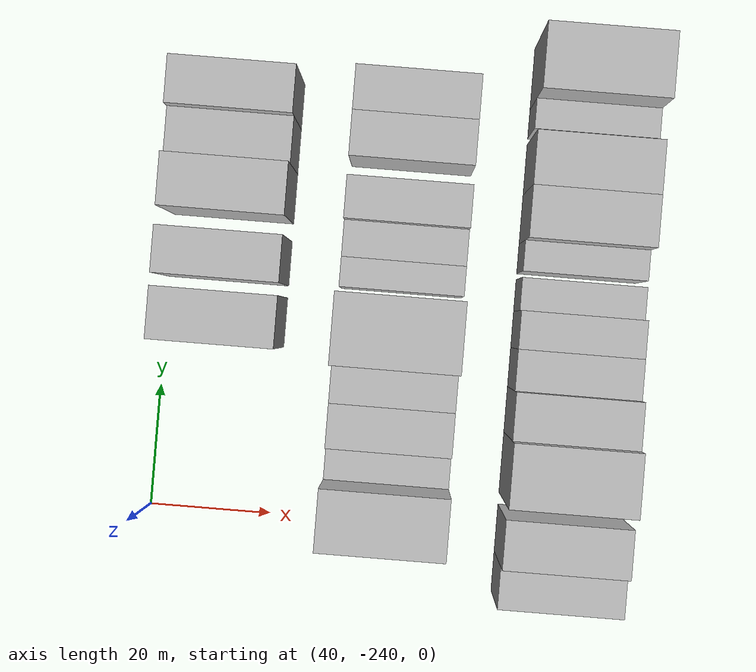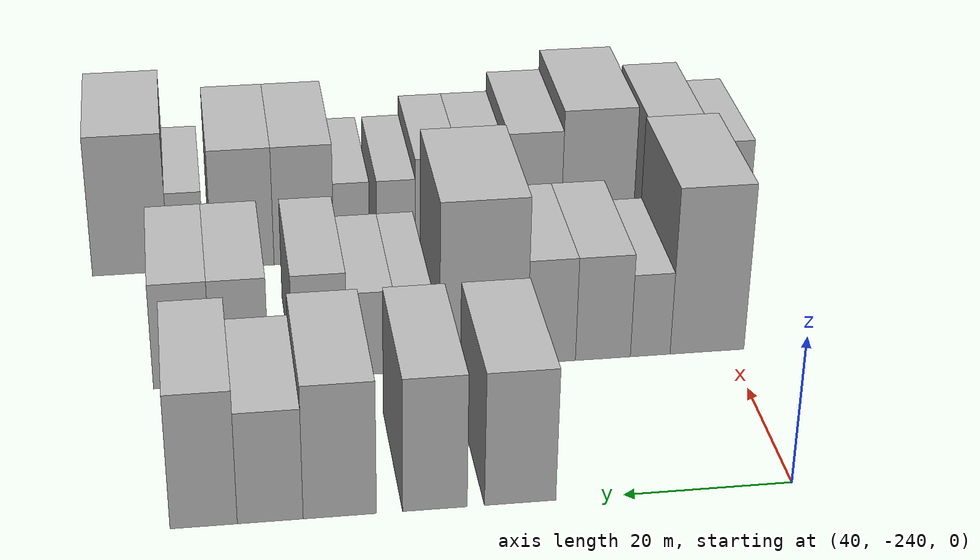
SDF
<sdf version="1.6">
 <world name="default">
  <model name="building_9">
   <static>1</static>
   <pose>50.0000 -207.9036 0 0.000000 0.000000 0.000000</pose>
   <link name="link">
    <pose>0 0 9.00 0 0 0</pose>
    <collision name="collision"><geometry><box><size>20.0000 8.3043 18.0000</size></box></geometry></collision>
    <visual name="visual">
     <cast_shadows>0</cast_shadows>
     <geometry><box><size>20.0000 8.3043 18.0000</size></box></geometry>
     <material>
      <script>
       <uri>model://HANNAS_wall/materials/scripts</uri>
       <uri>model://HANNAS_wall/materials/textures</uri>
       <name>vrc/HANNAS_wall</name>
      </script>
     </material>
    </visual>
   </link>
  </model>
  <model name="building_10">
   <static>1</static>
   <pose>50.0000 -198.0247 0 0.000000 0.000000 0.000000</pose>
   <link name="link">
    <pose>0 0 9.00 0 0 0</pose>
    <collision name="collision"><geometry><box><size>20.0000 7.4536 18.0000</size></box></geometry></collision>
    <visual name="visual">
     <cast_shadows>0</cast_shadows>
     <geometry><box><size>20.0000 7.4536 18.0000</size></box></geometry>
     <material>
      <script>
       <uri>model://HANNAS_wall/materials/scripts</uri>
       <uri>model://HANNAS_wall/materials/textures</uri>
       <name>vrc/HANNAS_wall</name>
      </script>
     </material>
    </visual>
   </link>
  </model>
  <model name="building_11">
   <static>1</static>
   <pose>50.0000 -187.1079 0 0.000000 0.000000 0.000000</pose>
   <link name="link">
    <pose>0 0 9.00 0 0 0</pose>
    <collision name="collision"><geometry><box><size>20.0000 8.3798 18.0000</size></box></geometry></collision>
    <visual name="visual">
     <cast_shadows>0</cast_shadows>
     <geometry><box><size>20.0000 8.3798 18.0000</size></box></geometry>
     <material>
      <script>
       <uri>model://HANNAS_wall/materials/scripts</uri>
       <uri>model://HANNAS_wall/materials/textures</uri>
       <name>vrc/HANNAS_wall</name>
      </script>
     </material>
    </visual>
   </link>
  </model>
  <model name="building_12">
   <static>1</static>
   <pose>50.0000 -179.1790 0 0.000000 0.000000 0.000000</pose>
   <link name="link">
    <pose>0 0 7.50 0 0 0</pose>
    <collision name="collision"><geometry><box><size>20.0000 7.4780 15.0000</size></box></geometry></collision>
    <visual name="visual">
     <cast_shadows>0</cast_shadows>
     <geometry><box><size>20.0000 7.4780 15.0000</size></box></geometry>
     <material>
      <script>
       <uri>model://HANNAS_wall/materials/scripts</uri>
       <uri>model://HANNAS_wall/materials/textures</uri>
       <name>vrc/HANNAS_wall</name>
      </script>
     </material>
    </visual>
   </link>
  </model>
  <model name="building_13">
   <static>1</static>
   <pose>50.0000 -171.6439 0 0.000000 0.000000 0.000000</pose>
   <link name="link">
    <pose>0 0 9.00 0 0 0</pose>
    <collision name="collision"><geometry><box><size>20.0000 7.5922 18.0000</size></box></geometry></collision>
    <visual name="visual">
     <cast_shadows>0</cast_shadows>
     <geometry><box><size>20.0000 7.5922 18.0000</size></box></geometry>
     <material>
      <script>
       <uri>model://HANNAS_wall/materials/scripts</uri>
       <uri>model://HANNAS_wall/materials/textures</uri>
       <name>vrc/HANNAS_wall</name>
      </script>
     </material>
    </visual>
   </link>
  </model>
  <model name="building_78">
   <static>1</static>
   <pose>79.0000 -237.0167 0 0.000000 0.000000 0.000000</pose>
   <link name="link">
    <pose>0 0 12.00 0 0 0</pose>
    <collision name="collision"><geometry><box><size>20.0000 9.6752 24.0000</size></box></geometry></collision>
    <visual name="visual">
     <cast_shadows>0</cast_shadows>
     <geometry><box><size>20.0000 9.6752 24.0000</size></box></geometry>
     <material>
      <script>
       <uri>model://HANNAS_wall/materials/scripts</uri>
       <uri>model://HANNAS_wall/materials/textures</uri>
       <name>vrc/HANNAS_wall</name>
      </script>
     </material>
    </visual>
   </link>
  </model>
  <model name="building_79">
   <static>1</static>
   <pose>79.0000 -229.5910 0 0.000000 0.000000 0.000000</pose>
   <link name="link">
    <pose>0 0 6.00 0 0 0</pose>
    <collision name="collision"><geometry><box><size>20.0000 5.1763 12.0000</size></box></geometry></collision>
    <visual name="visual">
     <cast_shadows>0</cast_shadows>
     <geometry><box><size>20.0000 5.1763 12.0000</size></box></geometry>
     <material>
      <script>
       <uri>model://HANNAS_wall/materials/scripts</uri>
       <uri>model://HANNAS_wall/materials/textures</uri>
       <name>vrc/HANNAS_wall</name>
      </script>
     </material>
    </visual>
   </link>
  </model>
  <model name="building_80">
   <static>1</static>
   <pose>79.0000 -223.4374 0 0.000000 0.000000 0.000000</pose>
   <link name="link">
    <pose>0 0 7.50 0 0 0</pose>
    <collision name="collision"><geometry><box><size>20.0000 7.1310 15.0000</size></box></geometry></collision>
    <visual name="visual">
     <cast_shadows>0</cast_shadows>
     <geometry><box><size>20.0000 7.1310 15.0000</size></box></geometry>
     <material>
      <script>
       <uri>model://HANNAS_wall/materials/scripts</uri>
       <uri>model://HANNAS_wall/materials/textures</uri>
       <name>vrc/HANNAS_wall</name>
      </script>
     </material>
    </visual>
   </link>
  </model>
  <model name="building_81">
   <static>1</static>
   <pose>79.0000 -216.7555 0 0.000000 0.000000 0.000000</pose>
   <link name="link">
    <pose>0 0 7.50 0 0 0</pose>
    <collision name="collision"><geometry><box><size>20.0000 6.2327 15.0000</size></box></geometry></collision>
    <visual name="visual">
     <cast_shadows>0</cast_shadows>
     <geometry><box><size>20.0000 6.2327 15.0000</size></box></geometry>
     <material>
      <script>
       <uri>model://HANNAS_wall/materials/scripts</uri>
       <uri>model://HANNAS_wall/materials/textures</uri>
       <name>vrc/HANNAS_wall</name>
      </script>
     </material>
    </visual>
   </link>
  </model>
  <model name="building_82">
   <static>1</static>
   <pose>79.0000 -208.0355 0 0.000000 0.000000 0.000000</pose>
   <link name="link">
    <pose>0 0 12.00 0 0 0</pose>
    <collision name="collision"><geometry><box><size>20.0000 11.2073 24.0000</size></box></geometry></collision>
    <visual name="visual">
     <cast_shadows>0</cast_shadows>
     <geometry><box><size>20.0000 11.2073 24.0000</size></box></geometry>
     <material>
      <script>
       <uri>model://HANNAS_wall/materials/scripts</uri>
       <uri>model://HANNAS_wall/materials/textures</uri>
       <name>vrc/HANNAS_wall</name>
      </script>
     </material>
    </visual>
   </link>
  </model>
  <model name="building_83">
   <static>1</static>
   <pose>79.0000 -199.0201 0 0.000000 0.000000 0.000000</pose>
   <link name="link">
    <pose>0 0 6.00 0 0 0</pose>
    <collision name="collision"><geometry><box><size>20.0000 4.8236 12.0000</size></box></geometry></collision>
    <visual name="visual">
     <cast_shadows>0</cast_shadows>
     <geometry><box><size>20.0000 4.8236 12.0000</size></box></geometry>
     <material>
      <script>
       <uri>model://HANNAS_wall/materials/scripts</uri>
       <uri>model://HANNAS_wall/materials/textures</uri>
       <name>vrc/HANNAS_wall</name>
      </script>
     </material>
    </visual>
   </link>
  </model>
  <model name="building_84">
   <static>1</static>
   <pose>79.0000 -193.6619 0 0.000000 0.000000 0.000000</pose>
   <link name="link">
    <pose>0 0 6.00 0 0 0</pose>
    <collision name="collision"><geometry><box><size>20.0000 5.8927 12.0000</size></box></geometry></collision>
    <visual name="visual">
     <cast_shadows>0</cast_shadows>
     <geometry><box><size>20.0000 5.8927 12.0000</size></box></geometry>
     <material>
      <script>
       <uri>model://HANNAS_wall/materials/scripts</uri>
       <uri>model://HANNAS_wall/materials/textures</uri>
       <name>vrc/HANNAS_wall</name>
      </script>
     </material>
    </visual>
   </link>
  </model>
  <model name="building_85">
   <static>1</static>
   <pose>79.0000 -187.2942 0 0.000000 0.000000 0.000000</pose>
   <link name="link">
    <pose>0 0 7.50 0 0 0</pose>
    <collision name="collision"><geometry><box><size>20.0000 6.8426 15.0000</size></box></geometry></collision>
    <visual name="visual">
     <cast_shadows>0</cast_shadows>
     <geometry><box><size>20.0000 6.8426 15.0000</size></box></geometry>
     <material>
      <script>
       <uri>model://HANNAS_wall/materials/scripts</uri>
       <uri>model://HANNAS_wall/materials/textures</uri>
       <name>vrc/HANNAS_wall</name>
      </script>
     </material>
    </visual>
   </link>
  </model>
  <model name="building_86">
   <static>1</static>
   <pose>79.0000 -177.2601 0 0.000000 0.000000 0.000000</pose>
   <link name="link">
    <pose>0 0 7.50 0 0 0</pose>
    <collision name="collision"><geometry><box><size>20.0000 7.2257 15.0000</size></box></geometry></collision>
    <visual name="visual">
     <cast_shadows>0</cast_shadows>
     <geometry><box><size>20.0000 7.2257 15.0000</size></box></geometry>
     <material>
      <script>
       <uri>model://HANNAS_wall/materials/scripts</uri>
       <uri>model://HANNAS_wall/materials/textures</uri>
       <name>vrc/HANNAS_wall</name>
      </script>
     </material>
    </visual>
   </link>
  </model>
  <model name="building_87">
   <static>1</static>
   <pose>79.0000 -170.0598 0 0.000000 0.000000 0.000000</pose>
   <link name="link">
    <pose>0 0 7.50 0 0 0</pose>
    <collision name="collision"><geometry><box><size>20.0000 7.1750 15.0000</size></box></geometry></collision>
    <visual name="visual">
     <cast_shadows>0</cast_shadows>
     <geometry><box><size>20.0000 7.1750 15.0000</size></box></geometry>
     <material>
      <script>
       <uri>model://HANNAS_wall/materials/scripts</uri>
       <uri>model://HANNAS_wall/materials/textures</uri>
       <name>vrc/HANNAS_wall</name>
      </script>
     </material>
    </visual>
   </link>
  </model>
  <model name="building_154">
   <static>1</static>
   <pose>108.0000 -246.6185 0 0.000000 0.000000 0.000000</pose>
   <link name="link">
    <pose>0 0 7.50 0 0 0</pose>
    <collision name="collision"><geometry><box><size>20.0000 6.6782 15.0000</size></box></geometry></collision>
    <visual name="visual">
     <cast_shadows>0</cast_shadows>
     <geometry><box><size>20.0000 6.6782 15.0000</size></box></geometry>
     <material>
      <script>
       <uri>model://HANNAS_wall/materials/scripts</uri>
       <uri>model://HANNAS_wall/materials/textures</uri>
       <name>vrc/HANNAS_wall</name>
      </script>
     </material>
    </visual>
   </link>
  </model>
  <model name="building_155">
   <static>1</static>
   <pose>108.0000 -239.3465 0 0.000000 0.000000 0.000000</pose>
   <link name="link">
    <pose>0 0 9.00 0 0 0</pose>
    <collision name="collision"><geometry><box><size>20.0000 7.8659 18.0000</size></box></geometry></collision>
    <visual name="visual">
     <cast_shadows>0</cast_shadows>
     <geometry><box><size>20.0000 7.8659 18.0000</size></box></geometry>
     <material>
      <script>
       <uri>model://HANNAS_wall/materials/scripts</uri>
       <uri>model://HANNAS_wall/materials/textures</uri>
       <name>vrc/HANNAS_wall</name>
      </script>
     </material>
    </visual>
   </link>
  </model>
  <model name="building_156">
   <static>1</static>
   <pose>108.0000 -228.3262 0 0.000000 0.000000 0.000000</pose>
   <link name="link">
    <pose>0 0 10.50 0 0 0</pose>
    <collision name="collision"><geometry><box><size>20.0000 10.1747 21.0000</size></box></geometry></collision>
    <visual name="visual">
     <cast_shadows>0</cast_shadows>
     <geometry><box><size>20.0000 10.1747 21.0000</size></box></geometry>
     <material>
      <script>
       <uri>model://HANNAS_wall/materials/scripts</uri>
       <uri>model://HANNAS_wall/materials/textures</uri>
       <name>vrc/HANNAS_wall</name>
      </script>
     </material>
    </visual>
   </link>
  </model>
  <model name="building_157">
   <static>1</static>
   <pose>108.0000 -219.4236 0 0.000000 0.000000 0.000000</pose>
   <link name="link">
    <pose>0 0 9.00 0 0 0</pose>
    <collision name="collision"><geometry><box><size>20.0000 7.6304 18.0000</size></box></geometry></collision>
    <visual name="visual">
     <cast_shadows>0</cast_shadows>
     <geometry><box><size>20.0000 7.6304 18.0000</size></box></geometry>
     <material>
      <script>
       <uri>model://HANNAS_wall/materials/scripts</uri>
       <uri>model://HANNAS_wall/materials/textures</uri>
       <name>vrc/HANNAS_wall</name>
      </script>
     </material>
    </visual>
   </link>
  </model>
  <model name="building_158">
   <static>1</static>
   <pose>108.0000 -212.3087 0 0.000000 0.000000 0.000000</pose>
   <link name="link">
    <pose>0 0 7.50 0 0 0</pose>
    <collision name="collision"><geometry><box><size>20.0000 6.5995 15.0000</size></box></geometry></collision>
    <visual name="visual">
     <cast_shadows>0</cast_shadows>
     <geometry><box><size>20.0000 6.5995 15.0000</size></box></geometry>
     <material>
      <script>
       <uri>model://HANNAS_wall/materials/scripts</uri>
       <uri>model://HANNAS_wall/materials/textures</uri>
       <name>vrc/HANNAS_wall</name>
      </script>
     </material>
    </visual>
   </link>
  </model>
  <model name="building_159">
   <static>1</static>
   <pose>108.0000 -205.9595 0 0.000000 0.000000 0.000000</pose>
   <link name="link">
    <pose>0 0 7.50 0 0 0</pose>
    <collision name="collision"><geometry><box><size>20.0000 6.0990 15.0000</size></box></geometry></collision>
    <visual name="visual">
     <cast_shadows>0</cast_shadows>
     <geometry><box><size>20.0000 6.0990 15.0000</size></box></geometry>
     <material>
      <script>
       <uri>model://HANNAS_wall/materials/scripts</uri>
       <uri>model://HANNAS_wall/materials/textures</uri>
       <name>vrc/HANNAS_wall</name>
      </script>
     </material>
    </visual>
   </link>
  </model>
  <model name="building_160">
   <static>1</static>
   <pose>108.0000 -200.2539 0 0.000000 0.000000 0.000000</pose>
   <link name="link">
    <pose>0 0 6.00 0 0 0</pose>
    <collision name="collision"><geometry><box><size>20.0000 5.3122 12.0000</size></box></geometry></collision>
    <visual name="visual">
     <cast_shadows>0</cast_shadows>
     <geometry><box><size>20.0000 5.3122 12.0000</size></box></geometry>
     <material>
      <script>
       <uri>model://HANNAS_wall/materials/scripts</uri>
       <uri>model://HANNAS_wall/materials/textures</uri>
       <name>vrc/HANNAS_wall</name>
      </script>
     </material>
    </visual>
   </link>
  </model>
  <model name="building_161">
   <static>1</static>
   <pose>108.0000 -194.1177 0 0.000000 0.000000 0.000000</pose>
   <link name="link">
    <pose>0 0 6.00 0 0 0</pose>
    <collision name="collision"><geometry><box><size>20.0000 4.9602 12.0000</size></box></geometry></collision>
    <visual name="visual">
     <cast_shadows>0</cast_shadows>
     <geometry><box><size>20.0000 4.9602 12.0000</size></box></geometry>
     <material>
      <script>
       <uri>model://HANNAS_wall/materials/scripts</uri>
       <uri>model://HANNAS_wall/materials/textures</uri>
       <name>vrc/HANNAS_wall</name>
      </script>
     </material>
    </visual>
   </link>
  </model>
  <model name="building_162">
   <static>1</static>
   <pose>108.0000 -187.5204 0 0.000000 0.000000 0.000000</pose>
   <link name="link">
    <pose>0 0 9.00 0 0 0</pose>
    <collision name="collision"><geometry><box><size>20.0000 8.2344 18.0000</size></box></geometry></collision>
    <visual name="visual">
     <cast_shadows>0</cast_shadows>
     <geometry><box><size>20.0000 8.2344 18.0000</size></box></geometry>
     <material>
      <script>
       <uri>model://HANNAS_wall/materials/scripts</uri>
       <uri>model://HANNAS_wall/materials/textures</uri>
       <name>vrc/HANNAS_wall</name>
      </script>
     </material>
    </visual>
   </link>
  </model>
  <model name="building_163">
   <static>1</static>
   <pose>108.0000 -179.1389 0 0.000000 0.000000 0.000000</pose>
   <link name="link">
    <pose>0 0 9.00 0 0 0</pose>
    <collision name="collision"><geometry><box><size>20.0000 8.5287 18.0000</size></box></geometry></collision>
    <visual name="visual">
     <cast_shadows>0</cast_shadows>
     <geometry><box><size>20.0000 8.5287 18.0000</size></box></geometry>
     <material>
      <script>
       <uri>model://HANNAS_wall/materials/scripts</uri>
       <uri>model://HANNAS_wall/materials/textures</uri>
       <name>vrc/HANNAS_wall</name>
      </script>
     </material>
    </visual>
   </link>
  </model>
  <model name="building_164">
   <static>1</static>
   <pose>108.0000 -171.4403 0 0.000000 0.000000 0.000000</pose>
   <link name="link">
    <pose>0 0 6.00 0 0 0</pose>
    <collision name="collision"><geometry><box><size>20.0000 4.8685 12.0000</size></box></geometry></collision>
    <visual name="visual">
     <cast_shadows>0</cast_shadows>
     <geometry><box><size>20.0000 4.8685 12.0000</size></box></geometry>
     <material>
      <script>
       <uri>model://HANNAS_wall/materials/scripts</uri>
       <uri>model://HANNAS_wall/materials/textures</uri>
       <name>vrc/HANNAS_wall</name>
      </script>
     </material>
    </visual>
   </link>
  </model>
  <model name="building_165">
   <static>1</static>
   <pose>108.0000 -163.8465 0 0.000000 0.000000 0.000000</pose>
   <link name="link">
    <pose>0 0 10.50 0 0 0</pose>
    <collision name="collision"><geometry><box><size>20.0000 10.3192 21.0000</size></box></geometry></collision>
    <visual name="visual">
     <cast_shadows>0</cast_shadows>
     <geometry><box><size>20.0000 10.3192 21.0000</size></box></geometry>
     <material>
      <script>
       <uri>model://HANNAS_wall/materials/scripts</uri>
       <uri>model://HANNAS_wall/materials/textures</uri>
       <name>vrc/HANNAS_wall</name>
      </script>
     </material>
    </visual>
   </link>
  </model>
 </world>
</sdf>
